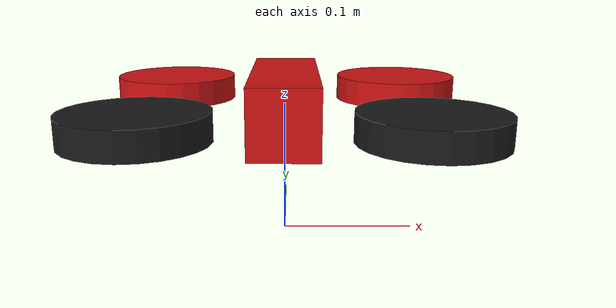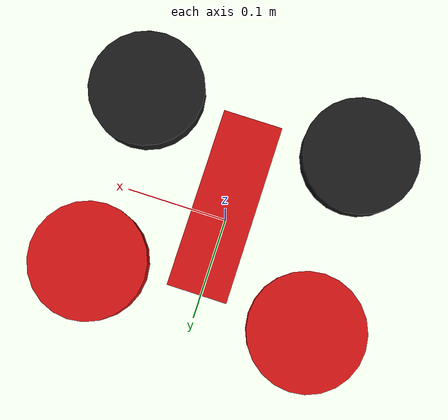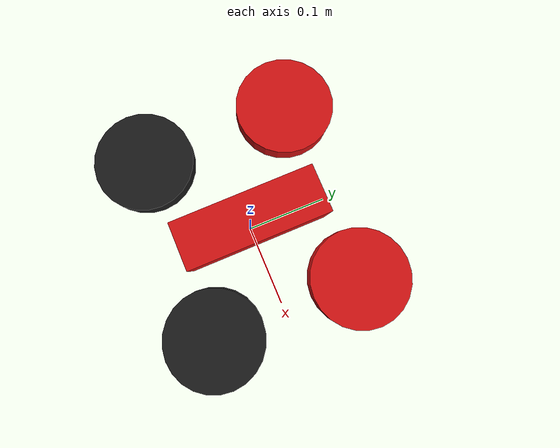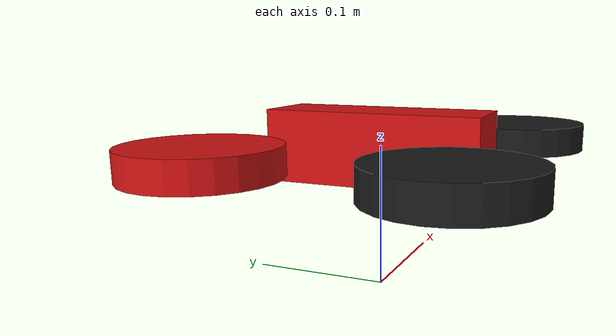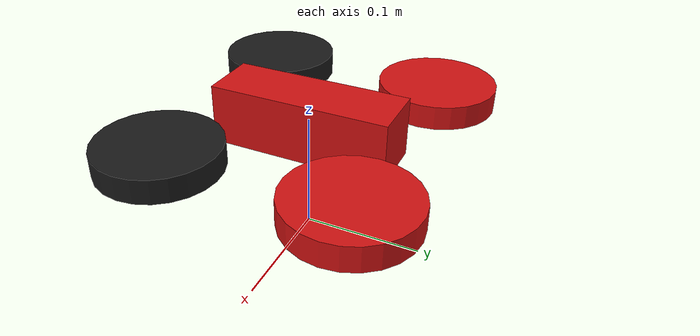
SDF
<?xml version='1.0'?>
<sdf version='1.9'>
  <model name="bebop_w_stereo_cams">
    <pose>0 0 .1 0 0 1.57</pose>

    <link name="chassis">

      <inertial>
        <mass>0.536</mass><!-- With bumpers. Tuned for correct nominal hover thrust, mass is higher than in real life (~0.40kg) -->
        <inertia>
          <ixx> 0.000906 </ixx>
          <iyy> 0.001242 </iyy>
          <izz> 0.002054 </izz>
          <ixy> 0. </ixy>
          <ixz> 0.000014 </ixz>
          <iyz> 0. </iyz>
        </inertia>
      </inertial>

      <collision name="collision">
        <geometry>
          <box>
            <size>0.4 0.4 0.05</size>
          </box>
        </geometry>
      </collision>

      <visual name="visual">
        <geometry>
          <box>
            <size>0.15 0.05 0.05</size>
          </box>
        </geometry>
        <material>
          <diffuse>0.82 0.07 0.07 1</diffuse>
          <ambient>0.82 0.07 0.07 1</ambient>
        </material>
      </visual>

      <sensor name="contactsensor" type="contact">
        <contact>
          <collision>collision</collision>
        </contact>
      </sensor>
    </link>

    <!-- MOTORS -->
    <link name="nw_motor">
      <pose>0.077 0.095 0 0 0 0</pose>
      <inertial>
        <mass>0.01</mass>
        <inertia>
          <ixx>0.0001</ixx>
          <iyy>0.0001</iyy>
          <izz>0.0001</izz>
          <ixy>0</ixy>
          <iyz>0</iyz>
          <ixz>0</ixz>
        </inertia>
      </inertial>
      <visual name="visual">
        <geometry>
          <cylinder>
            <radius>0.05</radius>
            <length>0.02</length>
          </cylinder>
        </geometry>
        <material>
          <diffuse>0.82 0.07 0.07 1</diffuse>
          <ambient>0.82 0.07 0.07 1</ambient>
        </material>
      </visual>
    </link>

    <joint type="fixed" name="nw_motor_joint">
      <parent>chassis</parent>
      <child>nw_motor</child>
    </joint>

    <link name="se_motor">
      <pose>-0.077 -0.095 0 0 0 0</pose>
      <inertial>
        <mass>0.01</mass>
        <inertia>
          <ixx>0.0001</ixx>
          <iyy>0.0001</iyy>
          <izz>0.0001</izz>
          <ixy>0</ixy>
          <iyz>0</iyz>
          <ixz>0</ixz>
        </inertia>
      </inertial>
      <visual name="visual">
        <geometry>
          <cylinder>
            <radius>0.05</radius>
            <length>0.02</length>
          </cylinder>
        </geometry>
        <material>
          <diffuse>0.1 0.1 0.1 1</diffuse>
          <ambient>0.1 0.1 0.1 1</ambient>
        </material>
      </visual>
    </link>

    <joint type="fixed" name="se_motor_joint">
      <parent>chassis</parent>
      <child>se_motor</child>
    </joint>

    <link name="ne_motor">
      <pose>0.077 -0.095 0 0 0 0</pose>
      <inertial>
        <mass>0.01</mass>
        <inertia>
          <ixx>0.0001</ixx>
          <iyy>0.0001</iyy>
          <izz>0.0001</izz>
          <ixy>0</ixy>
          <iyz>0</iyz>
          <ixz>0</ixz>
        </inertia>
      </inertial>
      <visual name="visual">
        <geometry>
          <cylinder>
            <radius>0.05</radius>
            <length>0.02</length>
          </cylinder>
        </geometry>
        <material>
          <diffuse>0.82 0.07 0.07 1</diffuse>
          <ambient>0.82 0.07 0.07 1</ambient>
        </material>
      </visual>
    </link>

    <joint type="fixed" name="ne_motor_joint">
      <parent>chassis</parent>
      <child>ne_motor</child>
    </joint>

    <link name="sw_motor">
      <pose>-0.077 0.095 0 0 0 0</pose>
      <inertial>
        <mass>0.01</mass>
        <inertia>
          <ixx>0.0001</ixx>
          <iyy>0.0001</iyy>
          <izz>0.0001</izz>
          <ixy>0</ixy>
          <iyz>0</iyz>
          <ixz>0</ixz>
        </inertia>
      </inertial>
      <visual name="visual">
        <geometry>
          <cylinder>
            <radius>0.05</radius>
            <length>0.02</length>
          </cylinder>
        </geometry>
        <material>
          <diffuse>0.1 0.1 0.1 1</diffuse>
          <ambient>0.1 0.1 0.1 1</ambient>
        </material>
      </visual>
    </link>

    <joint type="fixed" name="sw_motor_joint">
      <parent>chassis</parent>
      <child>sw_motor</child>
    </joint>

    <!-- CAMERAS -->

    <link name="front_camera"> <!-- left stereo camera -->
      <pose> 0.15 0.06 0 0 0 0</pose><!-- Bebop camera output is rotated 90 degrees and pitched slightly downwards -->
      <inertial>
        <mass>0.001</mass>
        <inertia>
          <ixx>0.0001</ixx>
          <iyy>0.0001</iyy>
          <izz>0.0001</izz>
          <ixy>0</ixy>
          <iyz>0</iyz>
          <ixz>0</ixz>
        </inertia>
      </inertial>
      <sensor type="camera" name="mt9f0022"> <!-- adjust with MT9F002_TARGET_FPS -->
        <update_rate>25.0</update_rate><!-- was 15.0 adjust with MT9F002_TARGET_FPS -->
        <camera>
          <image>
            <width>320</width><!-- Full sensor resolution -->
            <height>240</height><!-- Full sensor resolution -->
            <format>R8G8B8</format>
          </image>
          <horizontal_fov>1.91986217719376</horizontal_fov>
          <clip>
            <near>0.02</near>
            <far>300</far>
          </clip>
          <noise>
            <type>gaussian</type>
            <!-- Noise is sampled independently per pixel on each frame. That pixel's
              noise value is added to each of its color channels, which at that point lie
              in the range [0,1]. -->
            <mean>0.0</mean>
            <stddev>0.007</stddev>
          </noise>
        </camera>
      </sensor>
    </link>

    <joint name="front_camera_joint" type="fixed">
      <parent>chassis</parent>
      <child>bottom_camera</child>
    </joint>

    <link name="bottom_camera"> <!-- right stereo camera -->
      <pose> 0.15 -0.06 0.0 0 0 0</pose>
      <inertial>
        <mass>0.001</mass>
        <inertia>
          <ixx>0.0001</ixx>
          <iyy>0.0001</iyy>
          <izz>0.0001</izz>
          <ixy>0</ixy>
          <iyz>0</iyz>
          <ixz>0</ixz>
        </inertia>
      </inertial>
      <sensor type="camera" name="mt9v117">
        <update_rate>25.0</update_rate>
        <camera>
          <horizontal_fov>1.91986217719376</horizontal_fov>
          <image>
            <width>320</width>
            <height>240</height>
            <format>R8G8B8</format>
          </image>
          <clip>
            <near>0.02</near>
            <far>300</far>
          </clip>
          <noise>
            <type>gaussian</type>
            <!-- Noise is sampled independently per pixel on each frame. That pixel's
              noise value is added to each of its color channels, which at that point lie
              in the range [0,1]. -->
            <mean>0.0</mean>
            <stddev>0.007</stddev>
          </noise>
        </camera>
      </sensor>
    </link>

    <joint name="bottom_camera_joint" type="fixed">
      <parent>chassis</parent>
      <child>front_camera</child>
    </joint>
  </model>
</sdf>
